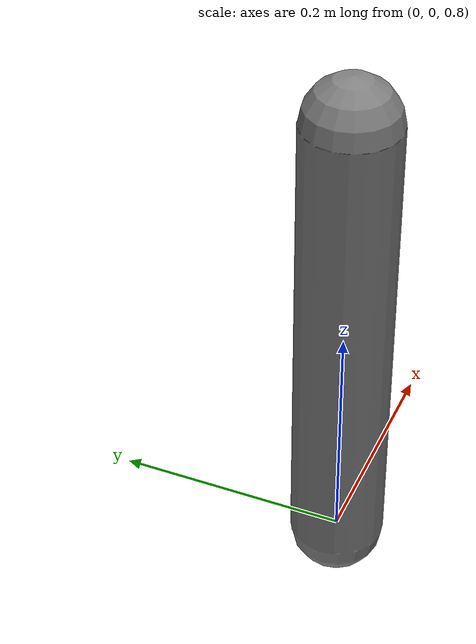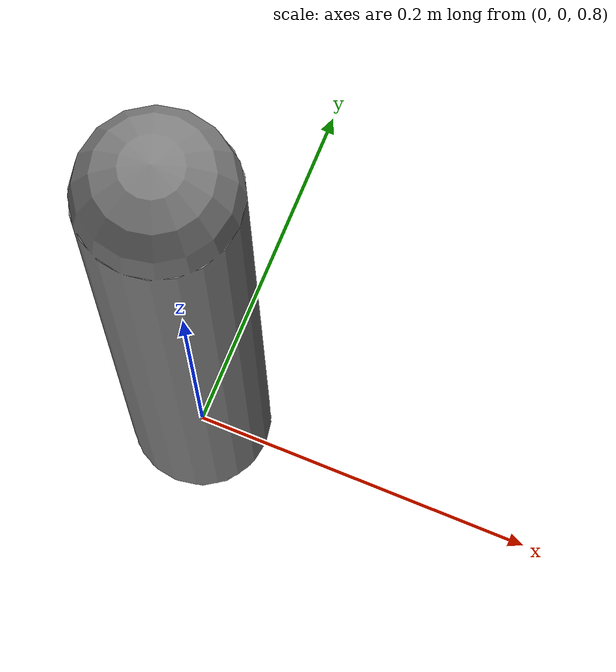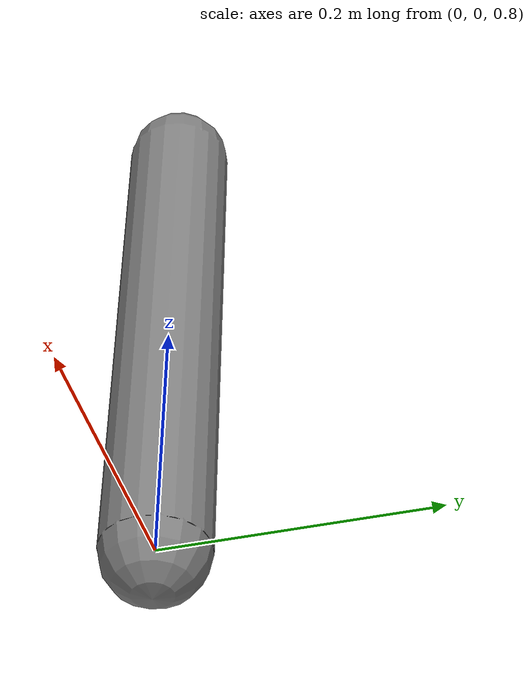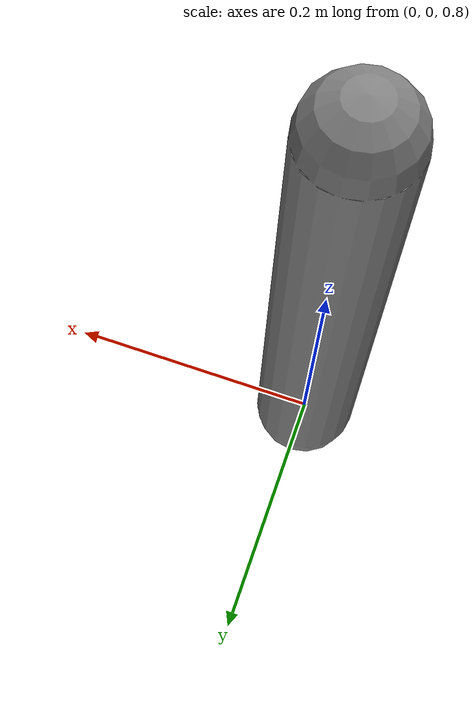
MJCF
<mujoco model="workload_qualification_example">
  <option timestep="0.001"/>
  <worldbody>
    <body name="arm" pos="0 0 1">
      <geom name="link" type="capsule" size="0.04 0.2" mass="1.5"/>
      <joint name="shoulder" type="hinge" axis="0 1 0" damping="0.030"/>
    </body>
  </worldbody>
  <actuator>
    <motor name="shoulder_motor" joint="shoulder" gear="1"/>
  </actuator>
</mujoco>
